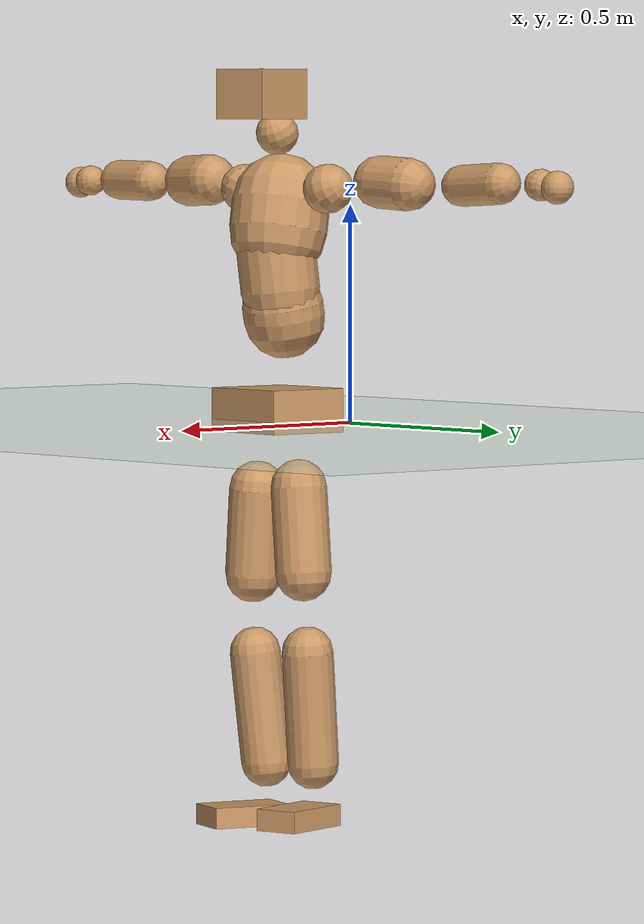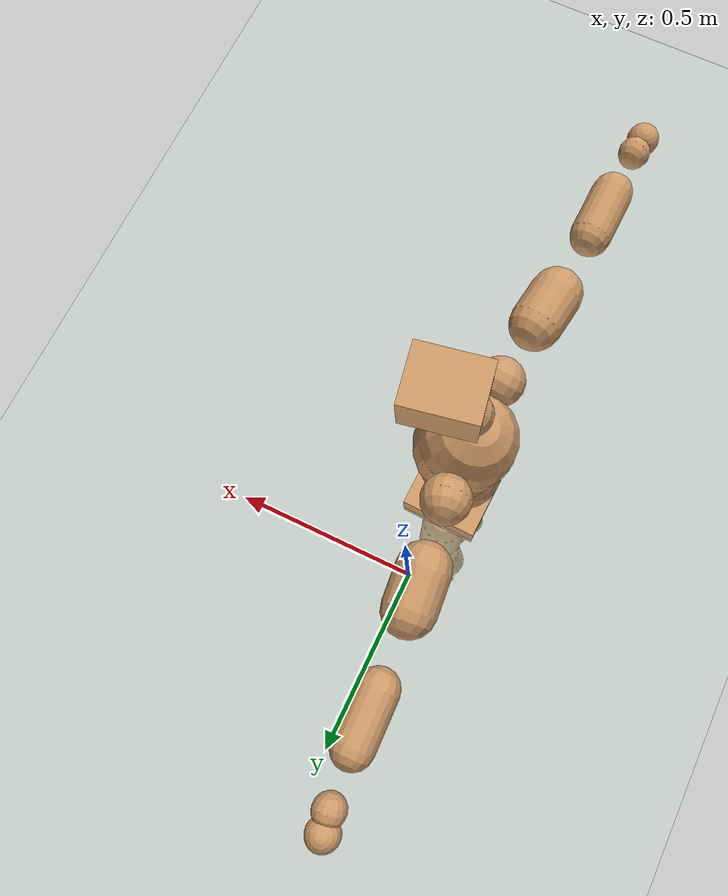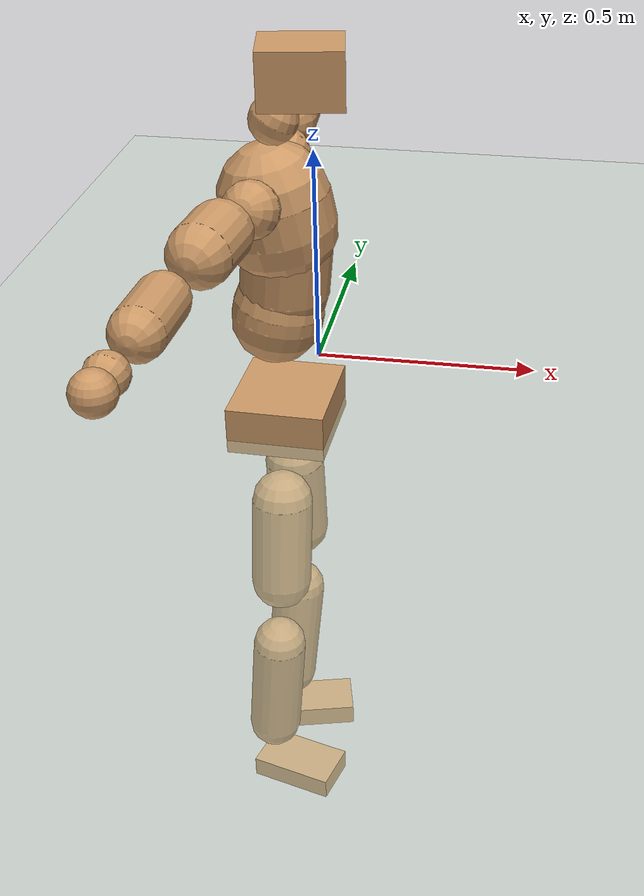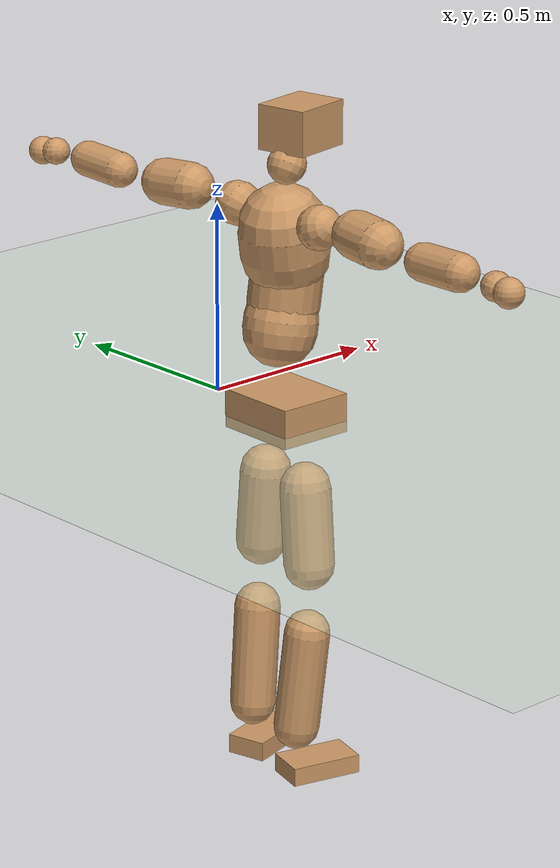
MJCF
<mujoco model="humanoid">
  <compiler coordinate="local" angle="radian"/>
  <default>
    <joint damping="0.0" armature="0.01" stiffness="0.0" limited="true"/>
    <geom conaffinity="1" condim="3" contype="7" margin="0.001" rgba="0.8 0.6 .4 1"/>
  </default>
  <asset>
    <texture type="skybox" builtin="gradient" rgb1=".4 .5 .6" rgb2="0 0 0" width="100" height="100"/>
    <texture builtin="flat" height="1278" mark="cross" markrgb="1 1 1" name="texgeom" random="0.01" rgb1="0.8 0.6 0.4" rgb2="0.8 0.6 0.4" type="cube" width="127"/>
    <texture builtin="checker" height="100" name="texplane" rgb1="0 0 0" rgb2="0.8 0.8 0.8" type="2d" width="100"/>
    <material name="MatPlane" reflectance="0.5" shininess="1" specular="1" texrepeat="60 60" texture="texplane"/>
    <material name="geom" texture="texgeom" texuniform="true"/>
  </asset>
  <worldbody>
    <light cutoff="100" diffuse="1 1 1" dir="-0 0 -1.3" directional="true" exponent="1" pos="0 0 1.3" specular=".1 .1 .1"/>
    <geom conaffinity="1" condim="3" name="floor" pos="0 0 0" rgba="0.8 0.9 0.8 1" size="100 100 .2" type="plane" material="MatPlane"/>
    <body name="Pelvis" pos="-0.0037 -0.2757 0.0285">
      <freejoint name="Pelvis"/>
      <geom type="box" contype="1" conaffinity="1" density="5359.375173" pos="-0.0112 0.0003 -0.0086" size="0.1036 0.1148 0.051" quat="0.9999 0.0000 0.0000 -0.0128" name="Pelvis"/>
      <body name="L_Hip" pos="-0.0171 0.0618 -0.0917">
        <joint name="L_Hip_x" type="hinge" pos="0 0 0" axis="1 0 0" stiffness="1600" damping="160" armature="0.02" range="-180.0000 180.0000"/>
        <joint name="L_Hip_y" type="hinge" pos="0 0 0" axis="0 1 0" stiffness="1600" damping="160" armature="0.02" range="-180.0000 180.0000"/>
        <joint name="L_Hip_z" type="hinge" pos="0 0 0" axis="0 0 1" stiffness="1600" damping="160" armature="0.02" range="-180.0000 180.0000"/>
        <geom type="capsule" contype="1" conaffinity="1" density="2040.816327" size="0.0657" fromto="0.0008 0.0090 -0.0952 0.0026 0.0277 -0.2939" name="L_Hip"/>
        <body name="L_Knee" pos="0.0034 0.0366 -0.3891">
          <joint name="L_Knee_x" type="hinge" pos="0 0 0" axis="1 0 0" stiffness="1600" damping="160" armature="0.02" range="-180.0000 180.0000"/>
          <joint name="L_Knee_y" type="hinge" pos="0 0 0" axis="0 1 0" stiffness="1600" damping="160" armature="0.02" range="-180.0000 180.0000"/>
          <joint name="L_Knee_z" type="hinge" pos="0 0 0" axis="0 0 1" stiffness="1600" damping="160" armature="0.02" range="-180.0000 180.0000"/>
          <geom type="capsule" contype="1" conaffinity="1" density="1234.567901" size="0.06" fromto="-0.0090 -0.0037 -0.0895 -0.0354 -0.0144 -0.3525" name="L_Knee"/>
          <body name="L_Ankle" pos="-0.0444 -0.0181 -0.442">
            <joint name="L_Ankle_x" type="hinge" pos="0 0 0" axis="1 0 0" stiffness="1600" damping="160" armature="0.02" range="-180.0000 180.0000"/>
            <joint name="L_Ankle_y" type="hinge" pos="0 0 0" axis="0 1 0" stiffness="1600" damping="160" armature="0.02" range="-180.0000 180.0000"/>
            <joint name="L_Ankle_z" type="hinge" pos="0 0 0" axis="0 0 1" stiffness="1600" damping="160" armature="0.02" range="-180.0000 180.0000"/>
            <geom type="box" contype="1" conaffinity="1" density="1000.000014" pos="0.0649 0.0165 -0.0311" size="0.0937 0.0529 0.0253" quat="0.9923 0.0000 0.0000 0.1239" name="L_Ankle"/>
            <body name="L_Toe" pos="0.1298 0.0329 -0.0621">
              <joint name="L_Toe_x" type="hinge" pos="0 0 0" axis="1 0 0" stiffness="1000" damping="100" armature="0.02" range="-180.0000 180.0000"/>
              <joint name="L_Toe_y" type="hinge" pos="0 0 0" axis="0 1 0" stiffness="1000" damping="100" armature="0.02" range="-180.0000 180.0000"/>
              <joint name="L_Toe_z" type="hinge" pos="0 0 0" axis="0 0 1" stiffness="1000" damping="100" armature="0.02" range="-180.0000 180.0000"/>
              <geom type="box" contype="1" conaffinity="1" density="8359622.252165" pos="0.0000 0.0000 0.0313" size="0.0011 0.0026 0.0013" quat="0.9916 0.0000 0.0000 0.1291" name="L_Toe"/>
            </body>
          </body>
        </body>
      </body>
      <body name="R_Hip" pos="-0.0106 -0.0652 -0.1019">
        <joint name="R_Hip_x" type="hinge" pos="0 0 0" axis="1 0 0" stiffness="1600" damping="160" armature="0.02" range="-180.0000 180.0000"/>
        <joint name="R_Hip_y" type="hinge" pos="0 0 0" axis="0 1 0" stiffness="1600" damping="160" armature="0.02" range="-180.0000 180.0000"/>
        <joint name="R_Hip_z" type="hinge" pos="0 0 0" axis="0 0 1" stiffness="1600" damping="160" armature="0.02" range="-180.0000 180.0000"/>
        <geom type="capsule" contype="1" conaffinity="1" density="2040.816327" size="0.0656" fromto="-0.0023 -0.0096 -0.0951 -0.0072 -0.0302 -0.2981" name="R_Hip"/>
        <body name="R_Knee" pos="-0.0095 -0.0398 -0.3932">
          <joint name="R_Knee_x" type="hinge" pos="0 0 0" axis="1 0 0" stiffness="1600" damping="160" armature="0.02" range="-180.0000 180.0000"/>
          <joint name="R_Knee_y" type="hinge" pos="0 0 0" axis="0 1 0" stiffness="1600" damping="160" armature="0.02" range="-180.0000 180.0000"/>
          <joint name="R_Knee_z" type="hinge" pos="0 0 0" axis="0 0 1" stiffness="1600" damping="160" armature="0.02" range="-180.0000 180.0000"/>
          <geom type="capsule" contype="1" conaffinity="1" density="1234.567901" size="0.0595" fromto="-0.0081 0.0046 -0.0890 -0.0318 0.0179 -0.3489" name="R_Knee"/>
          <body name="R_Ankle" pos="-0.0399 0.0224 -0.4379">
            <joint name="R_Ankle_x" type="hinge" pos="0 0 0" axis="1 0 0" stiffness="1600" damping="160" armature="0.02" range="-180.0000 180.0000"/>
            <joint name="R_Ankle_y" type="hinge" pos="0 0 0" axis="0 1 0" stiffness="1600" damping="160" armature="0.02" range="-180.0000 180.0000"/>
            <joint name="R_Ankle_z" type="hinge" pos="0 0 0" axis="0 0 1" stiffness="1600" damping="160" armature="0.02" range="-180.0000 180.0000"/>
            <geom type="box" contype="1" conaffinity="1" density="1000.00003" pos="0.0692 -0.0184 -0.0322" size="0.0949 0.055 0.0244" quat="0.9915 0.0000 0.0000 -0.1298" name="R_Ankle"/>
            <body name="R_Toe" pos="0.1385 -0.0369 -0.0645">
              <joint name="R_Toe_x" type="hinge" pos="0 0 0" axis="1 0 0" stiffness="1000" damping="100" armature="0.02" range="-180.0000 180.0000"/>
              <joint name="R_Toe_y" type="hinge" pos="0 0 0" axis="0 1 0" stiffness="1000" damping="100" armature="0.02" range="-180.0000 180.0000"/>
              <joint name="R_Toe_z" type="hinge" pos="0 0 0" axis="0 0 1" stiffness="1000" damping="100" armature="0.02" range="-180.0000 180.0000"/>
              <geom type="box" contype="1" conaffinity="1" density="7789759.471113" pos="0.0000 0.0000 0.0341" size="0.0012 0.0027 0.0013" quat="0.9926 0.0000 0.0000 -0.1214" name="R_Toe"/>
            </body>
          </body>
        </body>
      </body>
      <body name="Torso" pos="-0.0394 0.0051 0.1422">
        <joint name="Torso_x" type="hinge" pos="0 0 0" axis="1 0 0" stiffness="2000" damping="200" armature="0.02" range="-180.0000 180.0000"/>
        <joint name="Torso_y" type="hinge" pos="0 0 0" axis="0 1 0" stiffness="2000" damping="200" armature="0.02" range="-180.0000 180.0000"/>
        <joint name="Torso_z" type="hinge" pos="0 0 0" axis="0 0 1" stiffness="2000" damping="200" armature="0.02" range="-180.0000 180.0000"/>
        <geom type="capsule" contype="1" conaffinity="1" density="2040.816327" size="0.0953" fromto="0.0194 0.0038 0.0932 0.0133 0.0026 0.0637" name="Torso"/>
        <body name="Spine" pos="0.0327 0.0063 0.1569">
          <joint name="Spine_x" type="hinge" pos="0 0 0" axis="1 0 0" stiffness="2000" damping="200" armature="0.02" range="-180.0000 180.0000"/>
          <joint name="Spine_y" type="hinge" pos="0 0 0" axis="0 1 0" stiffness="2000" damping="200" armature="0.02" range="-180.0000 180.0000"/>
          <joint name="Spine_z" type="hinge" pos="0 0 0" axis="0 0 1" stiffness="2000" damping="200" armature="0.02" range="-180.0000 180.0000"/>
          <geom type="capsule" contype="1" conaffinity="1" density="2040.816327" size="0.0932" fromto="0.0095 -0.0043 0.0927 -0.0030 0.0014 -0.0292" name="Spine"/>
          <body name="Chest" pos="0.0065 -0.003 0.0634">
            <joint name="Chest_x" type="hinge" pos="0 0 0" axis="1 0 0" stiffness="2000" damping="200" armature="0.02" range="-180.0000 180.0000"/>
            <joint name="Chest_y" type="hinge" pos="0 0 0" axis="0 1 0" stiffness="2000" damping="200" armature="0.02" range="-180.0000 180.0000"/>
            <joint name="Chest_z" type="hinge" pos="0 0 0" axis="0 0 1" stiffness="2000" damping="200" armature="0.02" range="-180.0000 180.0000"/>
            <geom type="capsule" contype="1" conaffinity="1" density="2040.816327" size="0.1141" fromto="-0.0209 -0.0062 0.1120 -0.0085 -0.0025 0.0453" name="Chest"/>
            <body name="Neck" pos="-0.0403 -0.0156 0.2275">
              <joint name="Neck_x" type="hinge" pos="0 0 0" axis="1 0 0" stiffness="1000" damping="100" armature="0.02" range="-180.0000 180.0000"/>
              <joint name="Neck_y" type="hinge" pos="0 0 0" axis="0 1 0" stiffness="1000" damping="100" armature="0.02" range="-180.0000 180.0000"/>
              <joint name="Neck_z" type="hinge" pos="0 0 0" axis="0 0 1" stiffness="1000" damping="100" armature="0.02" range="-180.0000 180.0000"/>
              <geom type="capsule" contype="1" conaffinity="1" density="1000" size="0.0493" fromto="0.0262 0.0040 0.0440 0.0272 0.0041 0.0457" name="Neck"/>
              <body name="Head" pos="0.0533 0.0081 0.0896">
                <joint name="Head_x" type="hinge" pos="0 0 0" axis="1 0 0" stiffness="1000" damping="100" armature="0.02" range="-180.0000 180.0000"/>
                <joint name="Head_y" type="hinge" pos="0 0 0" axis="0 1 0" stiffness="1000" damping="100" armature="0.02" range="-180.0000 180.0000"/>
                <joint name="Head_z" type="hinge" pos="0 0 0" axis="0 0 1" stiffness="1000" damping="100" armature="0.02" range="-180.0000 180.0000"/>
                <geom type="box" contype="1" conaffinity="1" density="2250.000012" pos="0.0277 0.0051 0.0458" size="0.0832 0.0679 0.0575" quat="0.9959 0.0000 0.0000 0.0902" name="Head"/>
              </body>
            </body>
            <body name="L_Thorax" pos="-0.022 0.0783 0.123">
              <joint name="L_Thorax_x" type="hinge" pos="0 0 0" axis="1 0 0" stiffness="1000" damping="100" armature="0.02" range="-180.0000 180.0000"/>
              <joint name="L_Thorax_y" type="hinge" pos="0 0 0" axis="0 1 0" stiffness="1000" damping="100" armature="0.02" range="-180.0000 180.0000"/>
              <joint name="L_Thorax_z" type="hinge" pos="0 0 0" axis="0 0 1" stiffness="1000" damping="100" armature="0.02" range="-180.0000 180.0000"/>
              <geom type="capsule" contype="1" conaffinity="1" density="1000" size="0.0577" fromto="-0.0125 0.0649 0.0215 -0.0129 0.0668 0.0221" name="L_Thorax"/>
              <body name="L_Shoulder" pos="-0.0254 0.1317 0.0436">
                <joint name="L_Shoulder_x" type="hinge" pos="0 0 0" axis="1 0 0" stiffness="1000" damping="100" armature="0.02" range="-720.0000 720.0000"/>
                <joint name="L_Shoulder_y" type="hinge" pos="0 0 0" axis="0 1 0" stiffness="1000" damping="100" armature="0.02" range="-720.0000 720.0000"/>
                <joint name="L_Shoulder_z" type="hinge" pos="0 0 0" axis="0 0 1" stiffness="1000" damping="100" armature="0.02" range="-720.0000 720.0000"/>
                <geom type="capsule" contype="1" conaffinity="1" density="1000" size="0.0607" fromto="-0.0086 0.0901 -0.0054 -0.0171 0.1804 -0.0108" name="L_Shoulder"/>
                <body name="L_Elbow" pos="-0.0257 0.2705 -0.0161">
                  <joint name="L_Elbow_x" type="hinge" pos="0 0 0" axis="1 0 0" stiffness="1000" damping="100" armature="0.02" range="-720.0000 720.0000"/>
                  <joint name="L_Elbow_y" type="hinge" pos="0 0 0" axis="0 1 0" stiffness="1000" damping="100" armature="0.02" range="-720.0000 720.0000"/>
                  <joint name="L_Elbow_z" type="hinge" pos="0 0 0" axis="0 0 1" stiffness="1000" damping="100" armature="0.02" range="-720.0000 720.0000"/>
                  <geom type="capsule" contype="1" conaffinity="1" density="1000" size="0.047" fromto="-0.0021 0.0769 0.0036 -0.0053 0.1988 0.0092" name="L_Elbow"/>
                  <body name="L_Wrist" pos="-0.0074 0.2757 0.0127">
                    <joint name="L_Wrist_x" type="hinge" pos="0 0 0" axis="1 0 0" stiffness="600" damping="60" armature="0.02" range="-180.0000 180.0000"/>
                    <joint name="L_Wrist_y" type="hinge" pos="0 0 0" axis="0 1 0" stiffness="600" damping="60" armature="0.02" range="-180.0000 180.0000"/>
                    <joint name="L_Wrist_z" type="hinge" pos="0 0 0" axis="0 0 1" stiffness="600" damping="60" armature="0.02" range="-180.0000 180.0000"/>
                    <geom type="capsule" contype="1" conaffinity="1" density="1000" size="0.0362" fromto="-0.0079 0.0441 -0.0053 -0.0082 0.0460 -0.0056" name="L_Wrist"/>
                    <body name="L_Hand" pos="-0.0161 0.0901 -0.0109">
                      <joint name="L_Hand_x" type="hinge" pos="0 0 0" axis="1 0 0" stiffness="600" damping="60" armature="0.02" range="-180.0000 180.0000"/>
                      <joint name="L_Hand_y" type="hinge" pos="0 0 0" axis="0 1 0" stiffness="600" damping="60" armature="0.02" range="-180.0000 180.0000"/>
                      <joint name="L_Hand_z" type="hinge" pos="0 0 0" axis="0 0 1" stiffness="600" damping="60" armature="0.02" range="-180.0000 180.0000"/>
                      <geom type="sphere" contype="1" conaffinity="1" density="1000" size="0.0373" pos="0.0000 0.0000 0.0000" name="L_Hand"/>
                    </body>
                  </body>
                </body>
              </body>
            </body>
            <body name="R_Thorax" pos="-0.0258 -0.0887 0.1213">
              <joint name="R_Thorax_x" type="hinge" pos="0 0 0" axis="1 0 0" stiffness="1000" damping="100" armature="0.02" range="-180.0000 180.0000"/>
              <joint name="R_Thorax_y" type="hinge" pos="0 0 0" axis="0 1 0" stiffness="1000" damping="100" armature="0.02" range="-180.0000 180.0000"/>
              <joint name="R_Thorax_z" type="hinge" pos="0 0 0" axis="0 0 1" stiffness="1000" damping="100" armature="0.02" range="-180.0000 180.0000"/>
              <geom type="capsule" contype="1" conaffinity="1" density="1000" size="0.0569" fromto="-0.0057 -0.0587 0.0218 -0.0059 -0.0606 0.0225" name="R_Thorax"/>
              <body name="R_Shoulder" pos="-0.0115 -0.1193 0.0443">
                <joint name="R_Shoulder_x" type="hinge" pos="0 0 0" axis="1 0 0" stiffness="1000" damping="100" armature="0.02" range="-720.0000 720.0000"/>
                <joint name="R_Shoulder_y" type="hinge" pos="0 0 0" axis="0 1 0" stiffness="1000" damping="100" armature="0.02" range="-720.0000 720.0000"/>
                <joint name="R_Shoulder_z" type="hinge" pos="0 0 0" axis="0 0 1" stiffness="1000" damping="100" armature="0.02" range="-720.0000 720.0000"/>
                <geom type="capsule" contype="1" conaffinity="1" density="1000" size="0.0607" fromto="-0.0124 -0.0898 -0.0033 -0.0248 -0.1802 -0.0066" name="R_Shoulder"/>
                <body name="R_Elbow" pos="-0.0372 -0.27 -0.0099">
                  <joint name="R_Elbow_x" type="hinge" pos="0 0 0" axis="1 0 0" stiffness="1000" damping="100" armature="0.02" range="-720.0000 720.0000"/>
                  <joint name="R_Elbow_y" type="hinge" pos="0 0 0" axis="0 1 0" stiffness="1000" damping="100" armature="0.02" range="-720.0000 720.0000"/>
                  <joint name="R_Elbow_z" type="hinge" pos="0 0 0" axis="0 0 1" stiffness="1000" damping="100" armature="0.02" range="-720.0000 720.0000"/>
                  <geom type="capsule" contype="1" conaffinity="1" density="1000" size="0.0477" fromto="-0.0023 -0.0776 0.0016 -0.0059 -0.1990 0.0041" name="R_Elbow"/>
                  <body name="R_Wrist" pos="-0.0081 -0.2766 0.0057">
                    <joint name="R_Wrist_x" type="hinge" pos="0 0 0" axis="1 0 0" stiffness="600" damping="60" armature="0.02" range="-180.0000 180.0000"/>
                    <joint name="R_Wrist_y" type="hinge" pos="0 0 0" axis="0 1 0" stiffness="600" damping="60" armature="0.02" range="-180.0000 180.0000"/>
                    <joint name="R_Wrist_z" type="hinge" pos="0 0 0" axis="0 0 1" stiffness="600" damping="60" armature="0.02" range="-180.0000 180.0000"/>
                    <geom type="capsule" contype="1" conaffinity="1" density="1000" size="0.0366" fromto="-0.0049 -0.0448 -0.0044 -0.0051 -0.0467 -0.0046" name="R_Wrist"/>
                    <body name="R_Hand" pos="-0.01 -0.0915 -0.0089">
                      <joint name="R_Hand_x" type="hinge" pos="0 0 0" axis="1 0 0" stiffness="600" damping="60" armature="0.02" range="-180.0000 180.0000"/>
                      <joint name="R_Hand_y" type="hinge" pos="0 0 0" axis="0 1 0" stiffness="600" damping="60" armature="0.02" range="-180.0000 180.0000"/>
                      <joint name="R_Hand_z" type="hinge" pos="0 0 0" axis="0 0 1" stiffness="600" damping="60" armature="0.02" range="-180.0000 180.0000"/>
                      <geom type="sphere" contype="1" conaffinity="1" density="1000" size="0.0374" pos="0.0000 0.0000 0.0000" name="R_Hand"/>
                    </body>
                  </body>
                </body>
              </body>
            </body>
          </body>
        </body>
      </body>
    </body>
  </worldbody>
  <actuator>
    <motor name="L_Hip_x" joint="L_Hip_x" gear="500"/>
    <motor name="L_Hip_y" joint="L_Hip_y" gear="500"/>
    <motor name="L_Hip_z" joint="L_Hip_z" gear="500"/>
    <motor name="L_Knee_x" joint="L_Knee_x" gear="500"/>
    <motor name="L_Knee_y" joint="L_Knee_y" gear="500"/>
    <motor name="L_Knee_z" joint="L_Knee_z" gear="500"/>
    <motor name="L_Ankle_x" joint="L_Ankle_x" gear="500"/>
    <motor name="L_Ankle_y" joint="L_Ankle_y" gear="500"/>
    <motor name="L_Ankle_z" joint="L_Ankle_z" gear="500"/>
    <motor name="L_Toe_x" joint="L_Toe_x" gear="500"/>
    <motor name="L_Toe_y" joint="L_Toe_y" gear="500"/>
    <motor name="L_Toe_z" joint="L_Toe_z" gear="500"/>
    <motor name="R_Hip_x" joint="R_Hip_x" gear="500"/>
    <motor name="R_Hip_y" joint="R_Hip_y" gear="500"/>
    <motor name="R_Hip_z" joint="R_Hip_z" gear="500"/>
    <motor name="R_Knee_x" joint="R_Knee_x" gear="500"/>
    <motor name="R_Knee_y" joint="R_Knee_y" gear="500"/>
    <motor name="R_Knee_z" joint="R_Knee_z" gear="500"/>
    <motor name="R_Ankle_x" joint="R_Ankle_x" gear="500"/>
    <motor name="R_Ankle_y" joint="R_Ankle_y" gear="500"/>
    <motor name="R_Ankle_z" joint="R_Ankle_z" gear="500"/>
    <motor name="R_Toe_x" joint="R_Toe_x" gear="500"/>
    <motor name="R_Toe_y" joint="R_Toe_y" gear="500"/>
    <motor name="R_Toe_z" joint="R_Toe_z" gear="500"/>
    <motor name="Torso_x" joint="Torso_x" gear="500"/>
    <motor name="Torso_y" joint="Torso_y" gear="500"/>
    <motor name="Torso_z" joint="Torso_z" gear="500"/>
    <motor name="Spine_x" joint="Spine_x" gear="500"/>
    <motor name="Spine_y" joint="Spine_y" gear="500"/>
    <motor name="Spine_z" joint="Spine_z" gear="500"/>
    <motor name="Chest_x" joint="Chest_x" gear="500"/>
    <motor name="Chest_y" joint="Chest_y" gear="500"/>
    <motor name="Chest_z" joint="Chest_z" gear="500"/>
    <motor name="Neck_x" joint="Neck_x" gear="500"/>
    <motor name="Neck_y" joint="Neck_y" gear="500"/>
    <motor name="Neck_z" joint="Neck_z" gear="500"/>
    <motor name="Head_x" joint="Head_x" gear="500"/>
    <motor name="Head_y" joint="Head_y" gear="500"/>
    <motor name="Head_z" joint="Head_z" gear="500"/>
    <motor name="L_Thorax_x" joint="L_Thorax_x" gear="500"/>
    <motor name="L_Thorax_y" joint="L_Thorax_y" gear="500"/>
    <motor name="L_Thorax_z" joint="L_Thorax_z" gear="500"/>
    <motor name="L_Shoulder_x" joint="L_Shoulder_x" gear="500"/>
    <motor name="L_Shoulder_y" joint="L_Shoulder_y" gear="500"/>
    <motor name="L_Shoulder_z" joint="L_Shoulder_z" gear="500"/>
    <motor name="L_Elbow_x" joint="L_Elbow_x" gear="500"/>
    <motor name="L_Elbow_y" joint="L_Elbow_y" gear="500"/>
    <motor name="L_Elbow_z" joint="L_Elbow_z" gear="500"/>
    <motor name="L_Wrist_x" joint="L_Wrist_x" gear="500"/>
    <motor name="L_Wrist_y" joint="L_Wrist_y" gear="500"/>
    <motor name="L_Wrist_z" joint="L_Wrist_z" gear="500"/>
    <motor name="L_Hand_x" joint="L_Hand_x" gear="500"/>
    <motor name="L_Hand_y" joint="L_Hand_y" gear="500"/>
    <motor name="L_Hand_z" joint="L_Hand_z" gear="500"/>
    <motor name="R_Thorax_x" joint="R_Thorax_x" gear="500"/>
    <motor name="R_Thorax_y" joint="R_Thorax_y" gear="500"/>
    <motor name="R_Thorax_z" joint="R_Thorax_z" gear="500"/>
    <motor name="R_Shoulder_x" joint="R_Shoulder_x" gear="500"/>
    <motor name="R_Shoulder_y" joint="R_Shoulder_y" gear="500"/>
    <motor name="R_Shoulder_z" joint="R_Shoulder_z" gear="500"/>
    <motor name="R_Elbow_x" joint="R_Elbow_x" gear="500"/>
    <motor name="R_Elbow_y" joint="R_Elbow_y" gear="500"/>
    <motor name="R_Elbow_z" joint="R_Elbow_z" gear="500"/>
    <motor name="R_Wrist_x" joint="R_Wrist_x" gear="500"/>
    <motor name="R_Wrist_y" joint="R_Wrist_y" gear="500"/>
    <motor name="R_Wrist_z" joint="R_Wrist_z" gear="500"/>
    <motor name="R_Hand_x" joint="R_Hand_x" gear="500"/>
    <motor name="R_Hand_y" joint="R_Hand_y" gear="500"/>
    <motor name="R_Hand_z" joint="R_Hand_z" gear="500"/>
  </actuator>
  <contact>
    <exclude body1="Torso" body2="Chest"/>
    <exclude body1="Head" body2="Chest"/>
    <exclude body1="R_Knee" body2="R_Toe"/>
    <exclude body1="R_Knee" body2="L_Ankle"/>
    <exclude body1="R_Knee" body2="L_Toe"/>
    <exclude body1="L_Knee" body2="L_Toe"/>
    <exclude body1="L_Knee" body2="R_Ankle"/>
    <exclude body1="L_Knee" body2="R_Toe"/>
    <exclude body1="L_Shoulder" body2="Chest"/>
    <exclude body1="R_Shoulder" body2="Chest"/>
  </contact>
  <sensor/>
  <size njmax="700" nconmax="700"/>
</mujoco>
